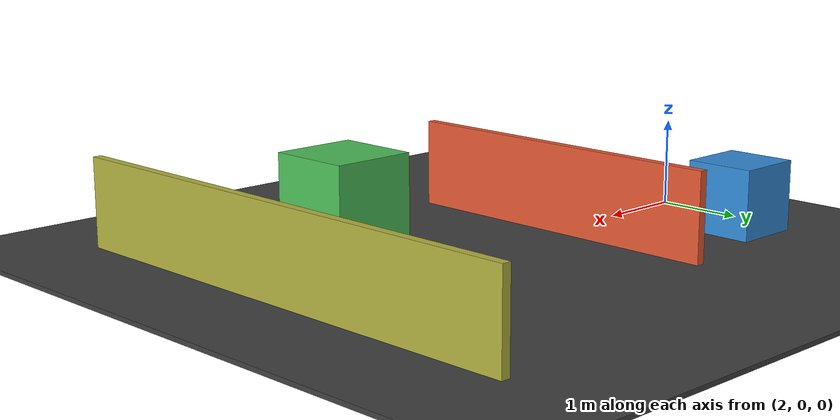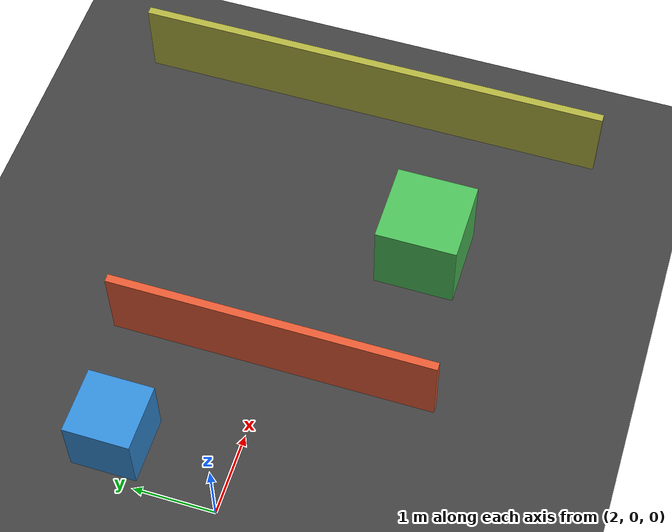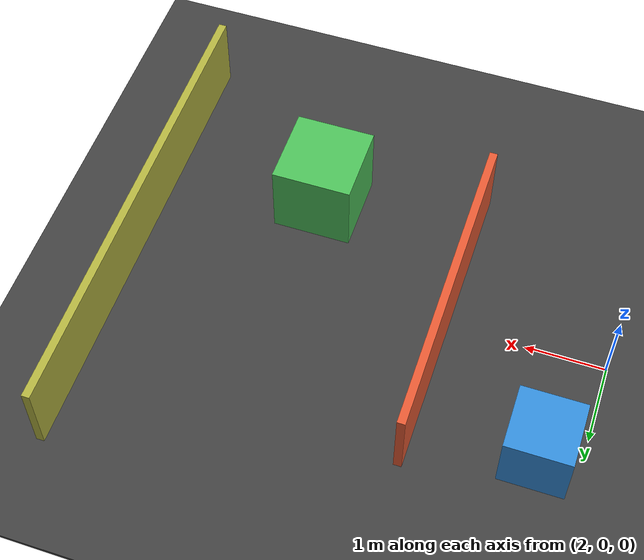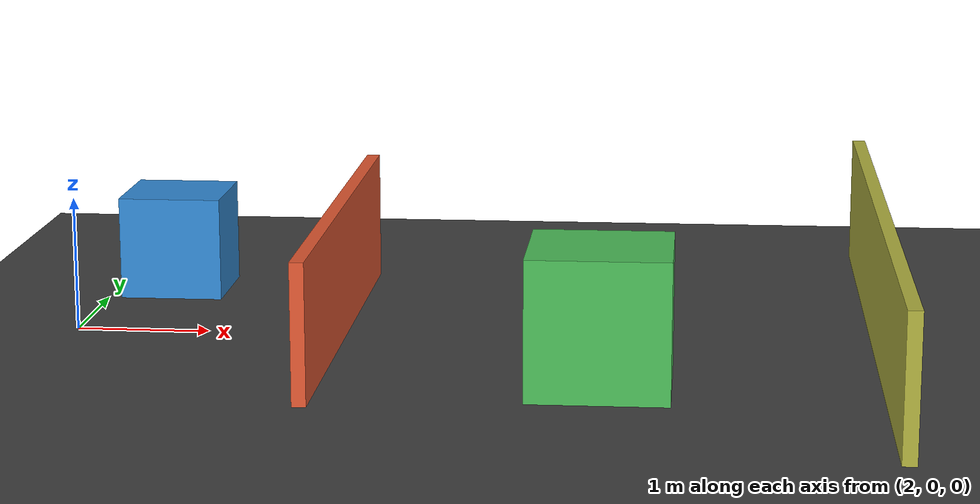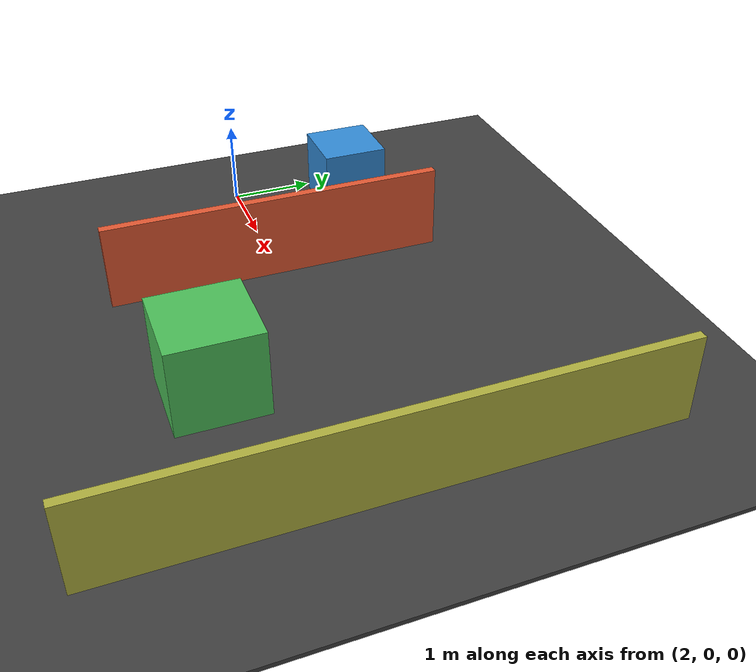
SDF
<?xml version="1.0" ?>
<sdf version="1.9">
  <world name="obstacle_course">
    <gravity>0 0 -9.8</gravity>
    <physics name="default_physics" type="ignored">
      <max_step_size>0.001</max_step_size>
      <real_time_factor>1.0</real_time_factor>
      <real_time_update_rate>1000</real_time_update_rate>
    </physics>

    <!-- Core Gazebo systems for rendering and physics. -->
    <plugin filename="gz-sim-physics-system" name="gz::sim::systems::Physics"/>
    <plugin filename="gz-sim-scene-broadcaster-system" name="gz::sim::systems::SceneBroadcaster"/>
    <!-- Needed by ros_gz_sim create so the robot can be inserted into the world. -->
    <plugin filename="gz-sim-user-commands-system" name="gz::sim::systems::UserCommands"/>

    <light type="directional" name="sun">
      <pose>0 0 10 0 0 0</pose>
      <cast_shadows>true</cast_shadows>
      <direction>-0.5 0.3 -1</direction>
      <diffuse>0.9 0.9 0.9 1</diffuse>
      <specular>0.2 0.2 0.2 1</specular>
    </light>

    <model name="ground">
      <static>true</static>
      <link name="ground_link">
        <collision name="ground_collision">
          <geometry>
            <box>
              <size>30 30 0.05</size>
            </box>
          </geometry>
        </collision>
        <visual name="ground_visual">
          <geometry>
            <box>
              <size>30 30 0.05</size>
            </box>
          </geometry>
          <material>
            <ambient>0.25 0.25 0.25 1</ambient>
            <diffuse>0.25 0.25 0.25 1</diffuse>
          </material>
        </visual>
      </link>
      <pose>0 0 -0.025 0 0 0</pose>
    </model>

    <model name="front_wall">
      <static>true</static>
      <link name="link">
        <collision name="collision">
          <geometry>
            <box>
              <size>0.1 4.0 1.0</size>
            </box>
          </geometry>
        </collision>
        <visual name="visual">
          <geometry>
            <box>
              <size>0.1 4.0 1.0</size>
            </box>
          </geometry>
          <material>
            <ambient>0.9 0.35 0.2 1</ambient>
            <diffuse>0.9 0.35 0.2 1</diffuse>
          </material>
        </visual>
      </link>
      <pose>4.0 0 0.5 0 0 0</pose>
    </model>

    <model name="left_block">
      <static>true</static>
      <link name="link">
        <collision name="collision">
          <geometry>
            <box>
              <size>0.8 0.8 0.8</size>
            </box>
          </geometry>
        </collision>
        <visual name="visual">
          <geometry>
            <box>
              <size>0.8 0.8 0.8</size>
            </box>
          </geometry>
          <material>
            <ambient>0.2 0.55 0.85 1</ambient>
            <diffuse>0.2 0.55 0.85 1</diffuse>
          </material>
        </visual>
      </link>
      <pose>2.5 1.4 0.4 0 0 0</pose>
    </model>

    <model name="right_block">
      <static>true</static>
      <link name="link">
        <collision name="collision">
          <geometry>
            <box>
              <size>1.0 1.0 1.0</size>
            </box>
          </geometry>
        </collision>
        <visual name="visual">
          <geometry>
            <box>
              <size>1.0 1.0 1.0</size>
            </box>
          </geometry>
          <material>
            <ambient>0.3 0.75 0.35 1</ambient>
            <diffuse>0.3 0.75 0.35 1</diffuse>
          </material>
        </visual>
      </link>
      <pose>6.0 -1.3 0.5 0 0 0</pose>
    </model>

    <model name="corridor_wall">
      <static>true</static>
      <link name="link">
        <collision name="collision">
          <geometry>
            <box>
              <size>0.1 6.0 1.0</size>
            </box>
          </geometry>
        </collision>
        <visual name="visual">
          <geometry>
            <box>
              <size>0.1 6.0 1.0</size>
            </box>
          </geometry>
          <material>
            <ambient>0.7 0.7 0.25 1</ambient>
            <diffuse>0.7 0.7 0.25 1</diffuse>
          </material>
        </visual>
      </link>
      <pose>8.0 0 0.5 0 0 0</pose>
    </model>
  </world>
</sdf>
